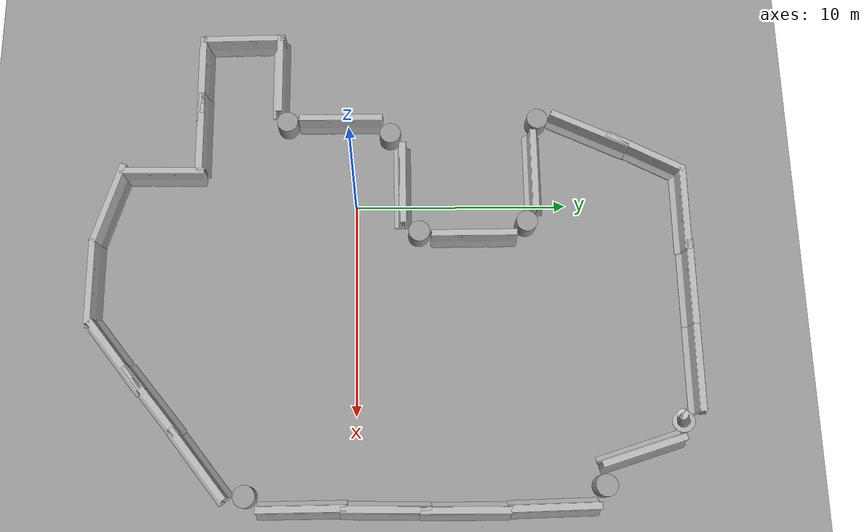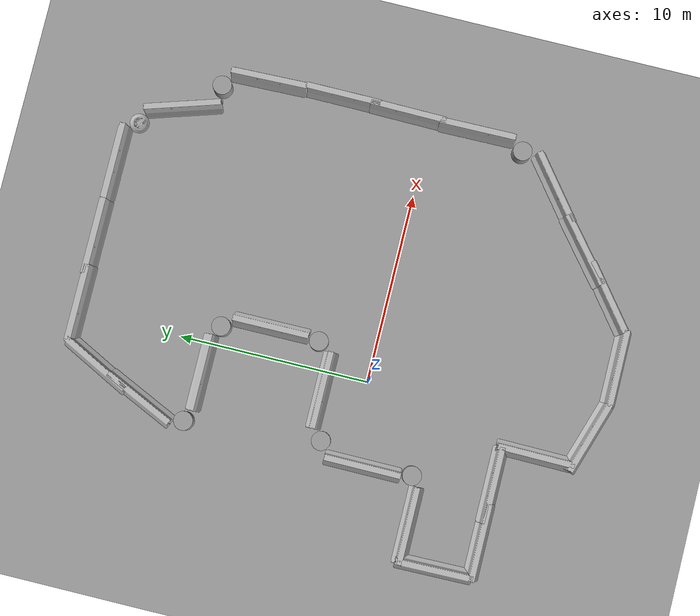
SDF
<sdf version="1.4">
 <world name="default">
  <light name="sun" type="directional">
   <pose>0 0 10 0 -0 0</pose>
   <diffuse>0.8 0.8 0.8 1</diffuse>
   <specular>0.2 0.2 0.2 1</specular>
   <attenuation>
    <range>1000</range>
    <constant>0.9</constant>
    <linear>0.01</linear>
    <quadratic>0.001</quadratic>
   </attenuation>
   <direction>0.5 0.1 -0.9</direction>
  </light>
  <scene><ambient>0.4 0.4 0.4 1</ambient><background>0.7 0.7 0.7 1</background><shadows>1</shadows></scene>
  <physics type="ode">
   <max_step_size>0.01</max_step_size>
   <real_time_factor>1</real_time_factor>
   <real_time_update_rate>100</real_time_update_rate>
   <gravity>0 0 -9.8</gravity>
  </physics>
  <model name="ground_plane_0">
   <static>1</static>
   <link name="link">
    <collision name="collision">
     <geometry><plane><normal>0 0 1</normal><size>100 100</size></plane></geometry>
     <surface><friction><ode><mu>100</mu><mu2>50</mu2></ode></friction></surface>
    </collision>
    <visual name="visual">
     <cast_shadows>0</cast_shadows>
     <geometry><plane><normal>0 0 1</normal><size>100 100</size></plane></geometry>
     <material>
      <script><uri>file://media/materials/scripts/gazebo.material</uri><name>Gazebo/Grey</name></script>
     </material>
    </visual>
    <velocity_decay><linear>0</linear><angular>0</angular></velocity_decay>
   </link>
   <pose>0.497681 0 0 0 -0 0</pose>
  </model>
  <spherical_coordinates>
   <surface_model>EARTH_WGS84</surface_model>
   <latitude_deg>0</latitude_deg>
   <longitude_deg>0</longitude_deg>
   <elevation>0</elevation>
   <heading_deg>0</heading_deg>
  </spherical_coordinates>
  <model name="jersey_barrier_0">
   <static>1</static>
   <link name="link">
    <visual name="visual">
     <geometry><mesh><uri>model://jersey_barrier/meshes/jersey_barrier.dae</uri></mesh></geometry>
    </visual>
    <collision name="upright">
     <pose>0 0 0.5715 0 -0 0</pose>
     <geometry><box><size>4.06542 0.3063 1.143</size></box></geometry>
    </collision>
    <collision name="base">
     <pose>0 0 0.032258 0 -0 0</pose>
     <geometry><box><size>4.06542 0.8107 0.064516</size></box></geometry>
    </collision>
    <collision name="base2">
     <pose>0 0 0.1 0 -0 0</pose>
     <geometry><box><size>4.06542 0.65 0.1</size></box></geometry>
    </collision>
    <collision name="base3">
     <pose>0 0 0.2 0 -0 0</pose>
     <geometry><box><size>4.06542 0.5 0.1</size></box></geometry>
    </collision>
    <collision name="left-angle">
     <pose>0 -0.224 0.2401 0.9 -0 0</pose>
     <geometry><box><size>4.06542 0.5 0.064516</size></box></geometry>
    </collision>
    <collision name="right-angle">
     <pose>0 0.224 0.2401 -0.9 0 0</pose>
     <geometry><box><size>4.06542 0.5 0.064516</size></box></geometry>
    </collision>
    <velocity_decay><linear>0</linear><angular>0</angular></velocity_decay>
   </link>
   <pose>-6.55956 -7.50628 0 0 -0 0</pose>
  </model>
  <model name="jersey_barrier_1">
   <static>1</static>
   <link name="link">
    <visual name="visual">
     <geometry><mesh><uri>model://jersey_barrier/meshes/jersey_barrier.dae</uri></mesh></geometry>
    </visual>
    <collision name="upright">
     <pose>0 0 0.5715 0 -0 0</pose>
     <geometry><box><size>4.06542 0.3063 1.143</size></box></geometry>
    </collision>
    <collision name="base">
     <pose>0 0 0.032258 0 -0 0</pose>
     <geometry><box><size>4.06542 0.8107 0.064516</size></box></geometry>
    </collision>
    <collision name="base2">
     <pose>0 0 0.1 0 -0 0</pose>
     <geometry><box><size>4.06542 0.65 0.1</size></box></geometry>
    </collision>
    <collision name="base3">
     <pose>0 0 0.2 0 -0 0</pose>
     <geometry><box><size>4.06542 0.5 0.1</size></box></geometry>
    </collision>
    <collision name="left-angle">
     <pose>0 -0.224 0.2401 0.9 -0 0</pose>
     <geometry><box><size>4.06542 0.5 0.064516</size></box></geometry>
    </collision>
    <collision name="right-angle">
     <pose>0 0.224 0.2401 -0.9 0 0</pose>
     <geometry><box><size>4.06542 0.5 0.064516</size></box></geometry>
    </collision>
    <velocity_decay><linear>0</linear><angular>0</angular></velocity_decay>
   </link>
   <pose>-8.47215 -5.54894 0 0 0 -1.55482</pose>
  </model>
  <model name="jersey_barrier_4">
   <static>1</static>
   <link name="link">
    <visual name="visual">
     <geometry><mesh><uri>model://jersey_barrier/meshes/jersey_barrier.dae</uri></mesh></geometry>
    </visual>
    <collision name="upright">
     <pose>0 0 0.5715 0 -0 0</pose>
     <geometry><box><size>4.06542 0.3063 1.143</size></box></geometry>
    </collision>
    <collision name="base">
     <pose>0 0 0.032258 0 -0 0</pose>
     <geometry><box><size>4.06542 0.8107 0.064516</size></box></geometry>
    </collision>
    <collision name="base2">
     <pose>0 0 0.1 0 -0 0</pose>
     <geometry><box><size>4.06542 0.65 0.1</size></box></geometry>
    </collision>
    <collision name="base3">
     <pose>0 0 0.2 0 -0 0</pose>
     <geometry><box><size>4.06542 0.5 0.1</size></box></geometry>
    </collision>
    <collision name="left-angle">
     <pose>0 -0.224 0.2401 0.9 -0 0</pose>
     <geometry><box><size>4.06542 0.5 0.064516</size></box></geometry>
    </collision>
    <collision name="right-angle">
     <pose>0 0.224 0.2401 -0.9 0 0</pose>
     <geometry><box><size>4.06542 0.5 0.064516</size></box></geometry>
    </collision>
    <velocity_decay><linear>0</linear><angular>0</angular></velocity_decay>
   </link>
   <pose>-6.6317 -3.73867 0 0 -0 0</pose>
  </model>
  <model name="unit_cylinder_1_0">
   <pose>-4.09884 -3.32638 0.49912 -0 -0 -0.024128</pose>
   <link name="link">
    <inertial>
     <mass>1</mass>
     <inertia><ixx>1</ixx><ixy>0</ixy><ixz>0</ixz><iyy>1</iyy><iyz>0</iyz><izz>1</izz></inertia>
    </inertial>
    <collision name="collision">
     <geometry><cylinder><radius>0.5</radius><length>1</length></cylinder></geometry>
    </collision>
    <visual name="visual">
     <geometry><cylinder><radius>0.5</radius><length>1</length></cylinder></geometry>
     <material>
      <script><uri>file://media/materials/scripts/gazebo.material</uri><name>Gazebo/Grey</name></script>
     </material>
    </visual>
    <velocity_decay><linear>0</linear><angular>0</angular></velocity_decay>
   </link>
   <static>0</static>
  </model>
  <model name="jersey_barrier_5">
   <static>1</static>
   <link name="link">
    <visual name="visual">
     <geometry><mesh><uri>model://jersey_barrier/meshes/jersey_barrier.dae</uri></mesh></geometry>
    </visual>
    <collision name="upright">
     <pose>0 0 0.5715 0 -0 0</pose>
     <geometry><box><size>4.06542 0.3063 1.143</size></box></geometry>
    </collision>
    <collision name="base">
     <pose>0 0 0.032258 0 -0 0</pose>
     <geometry><box><size>4.06542 0.8107 0.064516</size></box></geometry>
    </collision>
    <collision name="base2">
     <pose>0 0 0.1 0 -0 0</pose>
     <geometry><box><size>4.06542 0.65 0.1</size></box></geometry>
    </collision>
    <collision name="base3">
     <pose>0 0 0.2 0 -0 0</pose>
     <geometry><box><size>4.06542 0.5 0.1</size></box></geometry>
    </collision>
    <collision name="left-angle">
     <pose>0 -0.224 0.2401 0.9 -0 0</pose>
     <geometry><box><size>4.06542 0.5 0.064516</size></box></geometry>
    </collision>
    <collision name="right-angle">
     <pose>0 0.224 0.2401 -0.9 0 0</pose>
     <geometry><box><size>4.06542 0.5 0.064516</size></box></geometry>
    </collision>
    <velocity_decay><linear>0</linear><angular>0</angular></velocity_decay>
   </link>
   <pose>-4.25411 -0.755533 0 0 -0 1.56826</pose>
  </model>
  <model name="jersey_barrier_6">
   <static>1</static>
   <link name="link">
    <visual name="visual">
     <geometry><mesh><uri>model://jersey_barrier/meshes/jersey_barrier.dae</uri></mesh></geometry>
    </visual>
    <collision name="upright">
     <pose>0 0 0.5715 0 -0 0</pose>
     <geometry><box><size>4.06542 0.3063 1.143</size></box></geometry>
    </collision>
    <collision name="base">
     <pose>0 0 0.032258 0 -0 0</pose>
     <geometry><box><size>4.06542 0.8107 0.064516</size></box></geometry>
    </collision>
    <collision name="base2">
     <pose>0 0 0.1 0 -0 0</pose>
     <geometry><box><size>4.06542 0.65 0.1</size></box></geometry>
    </collision>
    <collision name="base3">
     <pose>0 0 0.2 0 -0 0</pose>
     <geometry><box><size>4.06542 0.5 0.1</size></box></geometry>
    </collision>
    <collision name="left-angle">
     <pose>0 -0.224 0.2401 0.9 -0 0</pose>
     <geometry><box><size>4.06542 0.5 0.064516</size></box></geometry>
    </collision>
    <collision name="right-angle">
     <pose>0 0.224 0.2401 -0.9 0 0</pose>
     <geometry><box><size>4.06542 0.5 0.064516</size></box></geometry>
    </collision>
    <velocity_decay><linear>0</linear><angular>0</angular></velocity_decay>
   </link>
   <pose>-0.948869 2.20472 0 0 -0 0</pose>
  </model>
  <model name="unit_cylinder_4">
   <pose>-3.48645 1.6265 0.49912 -0 -0 -0.049095</pose>
   <link name="link">
    <inertial>
     <mass>1</mass>
     <inertia><ixx>1</ixx><ixy>0</ixy><ixz>0</ixz><iyy>1</iyy><iyz>0</iyz><izz>1</izz></inertia>
    </inertial>
    <collision name="collision">
     <geometry><cylinder><radius>0.5</radius><length>1</length></cylinder></geometry>
    </collision>
    <visual name="visual">
     <geometry><cylinder><radius>0.5</radius><length>1</length></cylinder></geometry>
     <material>
      <script><uri>file://media/materials/scripts/gazebo.material</uri><name>Gazebo/Grey</name></script>
     </material>
    </visual>
    <velocity_decay><linear>0</linear><angular>0</angular></velocity_decay>
   </link>
   <static>0</static>
  </model>
  <model name="unit_cylinder_5">
   <pose>1.44817 2.95326 0.49912 0 -0 0.000256</pose>
   <link name="link">
    <inertial>
     <mass>1</mass>
     <inertia><ixx>1</ixx><ixy>0</ixy><ixz>0</ixz><iyy>1</iyy><iyz>0</iyz><izz>1</izz></inertia>
    </inertial>
    <collision name="collision">
     <geometry><cylinder><radius>0.5</radius><length>1</length></cylinder></geometry>
    </collision>
    <visual name="visual">
     <geometry><cylinder><radius>0.5</radius><length>1</length></cylinder></geometry>
     <material>
      <script><uri>file://media/materials/scripts/gazebo.material</uri><name>Gazebo/Grey</name></script>
     </material>
    </visual>
    <velocity_decay><linear>0</linear><angular>0</angular></velocity_decay>
   </link>
   <static>0</static>
  </model>
  <model name="jersey_barrier_7">
   <static>1</static>
   <link name="link">
    <visual name="visual">
     <geometry><mesh><uri>model://jersey_barrier/meshes/jersey_barrier.dae</uri></mesh></geometry>
    </visual>
    <collision name="upright">
     <pose>0 0 0.5715 0 -0 0</pose>
     <geometry><box><size>4.06542 0.3063 1.143</size></box></geometry>
    </collision>
    <collision name="base">
     <pose>0 0 0.032258 0 -0 0</pose>
     <geometry><box><size>4.06542 0.8107 0.064516</size></box></geometry>
    </collision>
    <collision name="base2">
     <pose>0 0 0.1 0 -0 0</pose>
     <geometry><box><size>4.06542 0.65 0.1</size></box></geometry>
    </collision>
    <collision name="base3">
     <pose>0 0 0.2 0 -0 0</pose>
     <geometry><box><size>4.06542 0.5 0.1</size></box></geometry>
    </collision>
    <collision name="left-angle">
     <pose>0 -0.224 0.2401 0.9 -0 0</pose>
     <geometry><box><size>4.06542 0.5 0.064516</size></box></geometry>
    </collision>
    <collision name="right-angle">
     <pose>0 0.224 0.2401 -0.9 0 0</pose>
     <geometry><box><size>4.06542 0.5 0.064516</size></box></geometry>
    </collision>
    <velocity_decay><linear>0</linear><angular>0</angular></velocity_decay>
   </link>
   <pose>1.58056 5.53402 0 0 0 -1.56714</pose>
  </model>
  <model name="jersey_barrier_8">
   <static>1</static>
   <link name="link">
    <visual name="visual">
     <geometry><mesh><uri>model://jersey_barrier/meshes/jersey_barrier.dae</uri></mesh></geometry>
    </visual>
    <collision name="upright">
     <pose>0 0 0.5715 0 -0 0</pose>
     <geometry><box><size>4.06542 0.3063 1.143</size></box></geometry>
    </collision>
    <collision name="base">
     <pose>0 0 0.032258 0 -0 0</pose>
     <geometry><box><size>4.06542 0.8107 0.064516</size></box></geometry>
    </collision>
    <collision name="base2">
     <pose>0 0 0.1 0 -0 0</pose>
     <geometry><box><size>4.06542 0.65 0.1</size></box></geometry>
    </collision>
    <collision name="base3">
     <pose>0 0 0.2 0 -0 0</pose>
     <geometry><box><size>4.06542 0.5 0.1</size></box></geometry>
    </collision>
    <collision name="left-angle">
     <pose>0 -0.224 0.2401 0.9 -0 0</pose>
     <geometry><box><size>4.06542 0.5 0.064516</size></box></geometry>
    </collision>
    <collision name="right-angle">
     <pose>0 0.224 0.2401 -0.9 0 0</pose>
     <geometry><box><size>4.06542 0.5 0.064516</size></box></geometry>
    </collision>
    <velocity_decay><linear>0</linear><angular>0</angular></velocity_decay>
   </link>
   <pose>-1.54801 8.47626 0 0 -0 0</pose>
  </model>
  <model name="unit_cylinder_6">
   <pose>0.98745 8.03245 0.49912 0 -0 2e-06</pose>
   <link name="link">
    <inertial>
     <mass>1</mass>
     <inertia><ixx>1</ixx><ixy>0</ixy><ixz>0</ixz><iyy>1</iyy><iyz>0</iyz><izz>1</izz></inertia>
    </inertial>
    <collision name="collision">
     <geometry><cylinder><radius>0.5</radius><length>1</length></cylinder></geometry>
    </collision>
    <visual name="visual">
     <geometry><cylinder><radius>0.5</radius><length>1</length></cylinder></geometry>
     <material>
      <script><uri>file://media/materials/scripts/gazebo.material</uri><name>Gazebo/Grey</name></script>
     </material>
    </visual>
    <velocity_decay><linear>0</linear><angular>0</angular></velocity_decay>
   </link>
   <static>0</static>
  </model>
  <model name="unit_cylinder_7">
   <pose>-4.17694 8.72532 0.49912 -0 -0 -0.061532</pose>
   <link name="link">
    <inertial>
     <mass>1</mass>
     <inertia><ixx>1</ixx><ixy>0</ixy><ixz>0</ixz><iyy>1</iyy><iyz>0</iyz><izz>1</izz></inertia>
    </inertial>
    <collision name="collision">
     <geometry><cylinder><radius>0.5</radius><length>1</length></cylinder></geometry>
    </collision>
    <visual name="visual">
     <geometry><cylinder><radius>0.5</radius><length>1</length></cylinder></geometry>
     <material>
      <script><uri>file://media/materials/scripts/gazebo.material</uri><name>Gazebo/Grey</name></script>
     </material>
    </visual>
    <velocity_decay><linear>0</linear><angular>0</angular></velocity_decay>
   </link>
   <static>0</static>
  </model>
  <model name="jersey_barrier_9">
   <static>1</static>
   <link name="link">
    <visual name="visual">
     <geometry><mesh><uri>model://jersey_barrier/meshes/jersey_barrier.dae</uri></mesh></geometry>
    </visual>
    <collision name="upright">
     <pose>0 0 0.5715 0 -0 0</pose>
     <geometry><box><size>4.06542 0.3063 1.143</size></box></geometry>
    </collision>
    <collision name="base">
     <pose>0 0 0.032258 0 -0 0</pose>
     <geometry><box><size>4.06542 0.8107 0.064516</size></box></geometry>
    </collision>
    <collision name="base2">
     <pose>0 0 0.1 0 -0 0</pose>
     <geometry><box><size>4.06542 0.65 0.1</size></box></geometry>
    </collision>
    <collision name="base3">
     <pose>0 0 0.2 0 -0 0</pose>
     <geometry><box><size>4.06542 0.5 0.1</size></box></geometry>
    </collision>
    <collision name="left-angle">
     <pose>0 -0.224 0.2401 0.9 -0 0</pose>
     <geometry><box><size>4.06542 0.5 0.064516</size></box></geometry>
    </collision>
    <collision name="right-angle">
     <pose>0 0.224 0.2401 -0.9 0 0</pose>
     <geometry><box><size>4.06542 0.5 0.064516</size></box></geometry>
    </collision>
    <velocity_decay><linear>0</linear><angular>0</angular></velocity_decay>
   </link>
   <pose>-3.59854 11.2317 0 0 -0 1.138</pose>
  </model>
  <model name="jersey_barrier_10">
   <static>1</static>
   <link name="link">
    <visual name="visual">
     <geometry><mesh><uri>model://jersey_barrier/meshes/jersey_barrier.dae</uri></mesh></geometry>
    </visual>
    <collision name="upright">
     <pose>0 0 0.5715 0 -0 0</pose>
     <geometry><box><size>4.06542 0.3063 1.143</size></box></geometry>
    </collision>
    <collision name="base">
     <pose>0 0 0.032258 0 -0 0</pose>
     <geometry><box><size>4.06542 0.8107 0.064516</size></box></geometry>
    </collision>
    <collision name="base2">
     <pose>0 0 0.1 0 -0 0</pose>
     <geometry><box><size>4.06542 0.65 0.1</size></box></geometry>
    </collision>
    <collision name="base3">
     <pose>0 0 0.2 0 -0 0</pose>
     <geometry><box><size>4.06542 0.5 0.1</size></box></geometry>
    </collision>
    <collision name="left-angle">
     <pose>0 -0.224 0.2401 0.9 -0 0</pose>
     <geometry><box><size>4.06542 0.5 0.064516</size></box></geometry>
    </collision>
    <collision name="right-angle">
     <pose>0 0.224 0.2401 -0.9 0 0</pose>
     <geometry><box><size>4.06542 0.5 0.064516</size></box></geometry>
    </collision>
    <velocity_decay><linear>0</linear><angular>0</angular></velocity_decay>
   </link>
   <pose>-2.40736 13.8193 0 0 -0 1.1003</pose>
  </model>
  <model name="jersey_barrier_11">
   <static>1</static>
   <link name="link">
    <visual name="visual">
     <geometry><mesh><uri>model://jersey_barrier/meshes/jersey_barrier.dae</uri></mesh></geometry>
    </visual>
    <collision name="upright">
     <pose>0 0 0.5715 0 -0 0</pose>
     <geometry><box><size>4.06542 0.3063 1.143</size></box></geometry>
    </collision>
    <collision name="base">
     <pose>0 0 0.032258 0 -0 0</pose>
     <geometry><box><size>4.06542 0.8107 0.064516</size></box></geometry>
    </collision>
    <collision name="base2">
     <pose>0 0 0.1 0 -0 0</pose>
     <geometry><box><size>4.06542 0.65 0.1</size></box></geometry>
    </collision>
    <collision name="base3">
     <pose>0 0 0.2 0 -0 0</pose>
     <geometry><box><size>4.06542 0.5 0.1</size></box></geometry>
    </collision>
    <collision name="left-angle">
     <pose>0 -0.224 0.2401 0.9 -0 0</pose>
     <geometry><box><size>4.06542 0.5 0.064516</size></box></geometry>
    </collision>
    <collision name="right-angle">
     <pose>0 0.224 0.2401 -0.9 0 0</pose>
     <geometry><box><size>4.06542 0.5 0.064516</size></box></geometry>
    </collision>
    <velocity_decay><linear>0</linear><angular>0</angular></velocity_decay>
   </link>
   <pose>0.438008 15.5062 0 0 -0 0</pose>
  </model>
  <model name="jersey_barrier_12">
   <static>1</static>
   <link name="link">
    <visual name="visual">
     <geometry><mesh><uri>model://jersey_barrier/meshes/jersey_barrier.dae</uri></mesh></geometry>
    </visual>
    <collision name="upright">
     <pose>0 0 0.5715 0 -0 0</pose>
     <geometry><box><size>4.06542 0.3063 1.143</size></box></geometry>
    </collision>
    <collision name="base">
     <pose>0 0 0.032258 0 -0 0</pose>
     <geometry><box><size>4.06542 0.8107 0.064516</size></box></geometry>
    </collision>
    <collision name="base2">
     <pose>0 0 0.1 0 -0 0</pose>
     <geometry><box><size>4.06542 0.65 0.1</size></box></geometry>
    </collision>
    <collision name="base3">
     <pose>0 0 0.2 0 -0 0</pose>
     <geometry><box><size>4.06542 0.5 0.1</size></box></geometry>
    </collision>
    <collision name="left-angle">
     <pose>0 -0.224 0.2401 0.9 -0 0</pose>
     <geometry><box><size>4.06542 0.5 0.064516</size></box></geometry>
    </collision>
    <collision name="right-angle">
     <pose>0 0.224 0.2401 -0.9 0 0</pose>
     <geometry><box><size>4.06542 0.5 0.064516</size></box></geometry>
    </collision>
    <velocity_decay><linear>0</linear><angular>0</angular></velocity_decay>
   </link>
   <pose>4 15.5544 0 0 -0 0</pose>
  </model>
  <model name="jersey_barrier_13">
   <static>1</static>
   <link name="link">
    <visual name="visual">
     <geometry><mesh><uri>model://jersey_barrier/meshes/jersey_barrier.dae</uri></mesh></geometry>
    </visual>
    <collision name="upright">
     <pose>0 0 0.5715 0 -0 0</pose>
     <geometry><box><size>4.06542 0.3063 1.143</size></box></geometry>
    </collision>
    <collision name="base">
     <pose>0 0 0.032258 0 -0 0</pose>
     <geometry><box><size>4.06542 0.8107 0.064516</size></box></geometry>
    </collision>
    <collision name="base2">
     <pose>0 0 0.1 0 -0 0</pose>
     <geometry><box><size>4.06542 0.65 0.1</size></box></geometry>
    </collision>
    <collision name="base3">
     <pose>0 0 0.2 0 -0 0</pose>
     <geometry><box><size>4.06542 0.5 0.1</size></box></geometry>
    </collision>
    <collision name="left-angle">
     <pose>0 -0.224 0.2401 0.9 -0 0</pose>
     <geometry><box><size>4.06542 0.5 0.064516</size></box></geometry>
    </collision>
    <collision name="right-angle">
     <pose>0 0.224 0.2401 -0.9 0 0</pose>
     <geometry><box><size>4.06542 0.5 0.064516</size></box></geometry>
    </collision>
    <velocity_decay><linear>0</linear><angular>0</angular></velocity_decay>
   </link>
   <pose>8 15.5487 0 0 -0 0</pose>
  </model>
  <model name="Construction Barrel_0">
   <link name="link">
    <inertial>
     <pose>0 0 0.4 0 -0 0</pose>
     <mass>500</mass>
     <inertia><ixx>51.2096</ixx><iyy>51.2096</iyy><izz>25</izz><ixy>0</ixy><ixz>0</ixz><iyz>0</iyz></inertia>
    </inertial>
    <collision name="collision">
     <geometry><mesh><uri>model://construction_barrel/meshes/construction_barrel.dae</uri></mesh></geometry>
    </collision>
    <visual name="visual">
     <geometry><mesh><uri>model://construction_barrel/meshes/construction_barrel.dae</uri></mesh></geometry>
    </visual>
    <velocity_decay><linear>0</linear><angular>0</angular></velocity_decay>
   </link>
   <pose>10.346 14.8746 0.168976 0.337969 0.022515 -0.645009</pose>
   <static>0</static>
  </model>
  <model name="jersey_barrier_14">
   <static>1</static>
   <link name="link">
    <visual name="visual">
     <geometry><mesh><uri>model://jersey_barrier/meshes/jersey_barrier.dae</uri></mesh></geometry>
    </visual>
    <collision name="upright">
     <pose>0 0 0.5715 0 -0 0</pose>
     <geometry><box><size>4.06542 0.3063 1.143</size></box></geometry>
    </collision>
    <collision name="base">
     <pose>0 0 0.032258 0 -0 0</pose>
     <geometry><box><size>4.06542 0.8107 0.064516</size></box></geometry>
    </collision>
    <collision name="base2">
     <pose>0 0 0.1 0 -0 0</pose>
     <geometry><box><size>4.06542 0.65 0.1</size></box></geometry>
    </collision>
    <collision name="base3">
     <pose>0 0 0.2 0 -0 0</pose>
     <geometry><box><size>4.06542 0.5 0.1</size></box></geometry>
    </collision>
    <collision name="left-angle">
     <pose>0 -0.224 0.2401 0.9 -0 0</pose>
     <geometry><box><size>4.06542 0.5 0.064516</size></box></geometry>
    </collision>
    <collision name="right-angle">
     <pose>0 0.224 0.2401 -0.9 0 0</pose>
     <geometry><box><size>4.06542 0.5 0.064516</size></box></geometry>
    </collision>
    <velocity_decay><linear>0</linear><angular>0</angular></velocity_decay>
   </link>
   <pose>11.6986 12.8024 0 0 0 -1.26685</pose>
  </model>
  <model name="unit_cylinder_9">
   <pose>13.1929 11.0465 0.49912 0 -0 0.052808</pose>
   <link name="link">
    <inertial>
     <mass>1</mass>
     <inertia><ixx>1</ixx><ixy>0</ixy><ixz>0</ixz><iyy>1</iyy><iyz>0</iyz><izz>1</izz></inertia>
    </inertial>
    <collision name="collision">
     <geometry><cylinder><radius>0.5</radius><length>1</length></cylinder></geometry>
    </collision>
    <visual name="visual">
     <geometry><cylinder><radius>0.5</radius><length>1</length></cylinder></geometry>
     <material>
      <script><uri>file://media/materials/scripts/gazebo.material</uri><name>Gazebo/Grey</name></script>
     </material>
    </visual>
    <velocity_decay><linear>0</linear><angular>0</angular></velocity_decay>
   </link>
   <static>0</static>
  </model>
  <model name="jersey_barrier_15">
   <static>1</static>
   <link name="link">
    <visual name="visual">
     <geometry><mesh><uri>model://jersey_barrier/meshes/jersey_barrier.dae</uri></mesh></geometry>
    </visual>
    <collision name="upright">
     <pose>0 0 0.5715 0 -0 0</pose>
     <geometry><box><size>4.06542 0.3063 1.143</size></box></geometry>
    </collision>
    <collision name="base">
     <pose>0 0 0.032258 0 -0 0</pose>
     <geometry><box><size>4.06542 0.8107 0.064516</size></box></geometry>
    </collision>
    <collision name="base2">
     <pose>0 0 0.1 0 -0 0</pose>
     <geometry><box><size>4.06542 0.65 0.1</size></box></geometry>
    </collision>
    <collision name="base3">
     <pose>0 0 0.2 0 -0 0</pose>
     <geometry><box><size>4.06542 0.5 0.1</size></box></geometry>
    </collision>
    <collision name="left-angle">
     <pose>0 -0.224 0.2401 0.9 -0 0</pose>
     <geometry><box><size>4.06542 0.5 0.064516</size></box></geometry>
    </collision>
    <collision name="right-angle">
     <pose>0 0.224 0.2401 -0.9 0 0</pose>
     <geometry><box><size>4.06542 0.5 0.064516</size></box></geometry>
    </collision>
    <velocity_decay><linear>0</linear><angular>0</angular></velocity_decay>
   </link>
   <pose>14.1286 8.75808 0 0 0 -1.54278</pose>
  </model>
  <model name="jersey_barrier_16">
   <static>1</static>
   <link name="link">
    <visual name="visual">
     <geometry><mesh><uri>model://jersey_barrier/meshes/jersey_barrier.dae</uri></mesh></geometry>
    </visual>
    <collision name="upright">
     <pose>0 0 0.5715 0 -0 0</pose>
     <geometry><box><size>4.06542 0.3063 1.143</size></box></geometry>
    </collision>
    <collision name="base">
     <pose>0 0 0.032258 0 -0 0</pose>
     <geometry><box><size>4.06542 0.8107 0.064516</size></box></geometry>
    </collision>
    <collision name="base2">
     <pose>0 0 0.1 0 -0 0</pose>
     <geometry><box><size>4.06542 0.65 0.1</size></box></geometry>
    </collision>
    <collision name="base3">
     <pose>0 0 0.2 0 -0 0</pose>
     <geometry><box><size>4.06542 0.5 0.1</size></box></geometry>
    </collision>
    <collision name="left-angle">
     <pose>0 -0.224 0.2401 0.9 -0 0</pose>
     <geometry><box><size>4.06542 0.5 0.064516</size></box></geometry>
    </collision>
    <collision name="right-angle">
     <pose>0 0.224 0.2401 -0.9 0 0</pose>
     <geometry><box><size>4.06542 0.5 0.064516</size></box></geometry>
    </collision>
    <velocity_decay><linear>0</linear><angular>0</angular></velocity_decay>
   </link>
   <pose>14.2316 4.81595 0 0 0 -1.57305</pose>
  </model>
  <model name="jersey_barrier_17">
   <static>1</static>
   <link name="link">
    <visual name="visual">
     <geometry><mesh><uri>model://jersey_barrier/meshes/jersey_barrier.dae</uri></mesh></geometry>
    </visual>
    <collision name="upright">
     <pose>0 0 0.5715 0 -0 0</pose>
     <geometry><box><size>4.06542 0.3063 1.143</size></box></geometry>
    </collision>
    <collision name="base">
     <pose>0 0 0.032258 0 -0 0</pose>
     <geometry><box><size>4.06542 0.8107 0.064516</size></box></geometry>
    </collision>
    <collision name="base2">
     <pose>0 0 0.1 0 -0 0</pose>
     <geometry><box><size>4.06542 0.65 0.1</size></box></geometry>
    </collision>
    <collision name="base3">
     <pose>0 0 0.2 0 -0 0</pose>
     <geometry><box><size>4.06542 0.5 0.1</size></box></geometry>
    </collision>
    <collision name="left-angle">
     <pose>0 -0.224 0.2401 0.9 -0 0</pose>
     <geometry><box><size>4.06542 0.5 0.064516</size></box></geometry>
    </collision>
    <collision name="right-angle">
     <pose>0 0.224 0.2401 -0.9 0 0</pose>
     <geometry><box><size>4.06542 0.5 0.064516</size></box></geometry>
    </collision>
    <velocity_decay><linear>0</linear><angular>0</angular></velocity_decay>
   </link>
   <pose>14.1811 1.30932 0 0 0 -1.58255</pose>
  </model>
  <model name="jersey_barrier_18">
   <static>1</static>
   <link name="link">
    <visual name="visual">
     <geometry><mesh><uri>model://jersey_barrier/meshes/jersey_barrier.dae</uri></mesh></geometry>
    </visual>
    <collision name="upright">
     <pose>0 0 0.5715 0 -0 0</pose>
     <geometry><box><size>4.06542 0.3063 1.143</size></box></geometry>
    </collision>
    <collision name="base">
     <pose>0 0 0.032258 0 -0 0</pose>
     <geometry><box><size>4.06542 0.8107 0.064516</size></box></geometry>
    </collision>
    <collision name="base2">
     <pose>0 0 0.1 0 -0 0</pose>
     <geometry><box><size>4.06542 0.65 0.1</size></box></geometry>
    </collision>
    <collision name="base3">
     <pose>0 0 0.2 0 -0 0</pose>
     <geometry><box><size>4.06542 0.5 0.1</size></box></geometry>
    </collision>
    <collision name="left-angle">
     <pose>0 -0.224 0.2401 0.9 -0 0</pose>
     <geometry><box><size>4.06542 0.5 0.064516</size></box></geometry>
    </collision>
    <collision name="right-angle">
     <pose>0 0.224 0.2401 -0.9 0 0</pose>
     <geometry><box><size>4.06542 0.5 0.064516</size></box></geometry>
    </collision>
    <velocity_decay><linear>0</linear><angular>0</angular></velocity_decay>
   </link>
   <pose>14.1302 -2.41569 0 0 0 -1.55957</pose>
  </model>
  <model name="jersey_barrier_19">
   <static>1</static>
   <link name="link">
    <visual name="visual">
     <geometry><mesh><uri>model://jersey_barrier/meshes/jersey_barrier.dae</uri></mesh></geometry>
    </visual>
    <collision name="upright">
     <pose>0 0 0.5715 0 -0 0</pose>
     <geometry><box><size>4.06542 0.3063 1.143</size></box></geometry>
    </collision>
    <collision name="base">
     <pose>0 0 0.032258 0 -0 0</pose>
     <geometry><box><size>4.06542 0.8107 0.064516</size></box></geometry>
    </collision>
    <collision name="base2">
     <pose>0 0 0.1 0 -0 0</pose>
     <geometry><box><size>4.06542 0.65 0.1</size></box></geometry>
    </collision>
    <collision name="base3">
     <pose>0 0 0.2 0 -0 0</pose>
     <geometry><box><size>4.06542 0.5 0.1</size></box></geometry>
    </collision>
    <collision name="left-angle">
     <pose>0 -0.224 0.2401 0.9 -0 0</pose>
     <geometry><box><size>4.06542 0.5 0.064516</size></box></geometry>
    </collision>
    <collision name="right-angle">
     <pose>0 0.224 0.2401 -0.9 0 0</pose>
     <geometry><box><size>4.06542 0.5 0.064516</size></box></geometry>
    </collision>
    <velocity_decay><linear>0</linear><angular>0</angular></velocity_decay>
   </link>
   <pose>-1.60053 -9.25024 0 0 0 -1.58024</pose>
  </model>
  <model name="unit_cylinder_10">
   <pose>13.5594 -4.93909 0.49912 0 -0 0.002938</pose>
   <link name="link">
    <inertial>
     <mass>1</mass>
     <inertia><ixx>1</ixx><ixy>0</ixy><ixz>0</ixz><iyy>1</iyy><iyz>0</iyz><izz>1</izz></inertia>
    </inertial>
    <collision name="collision">
     <geometry><cylinder><radius>0.5</radius><length>1</length></cylinder></geometry>
    </collision>
    <visual name="visual">
     <geometry><cylinder><radius>0.5</radius><length>1</length></cylinder></geometry>
     <material>
      <script><uri>file://media/materials/scripts/gazebo.material</uri><name>Gazebo/Grey</name></script>
     </material>
    </visual>
    <velocity_decay><linear>0</linear><angular>0</angular></velocity_decay>
   </link>
   <static>0</static>
  </model>
  <model name="jersey_barrier_21">
   <static>1</static>
   <link name="link">
    <visual name="visual">
     <geometry><mesh><uri>model://jersey_barrier/meshes/jersey_barrier.dae</uri></mesh></geometry>
    </visual>
    <collision name="upright">
     <pose>0 0 0.5715 0 -0 0</pose>
     <geometry><box><size>4.06542 0.3063 1.143</size></box></geometry>
    </collision>
    <collision name="base">
     <pose>0 0 0.032258 0 -0 0</pose>
     <geometry><box><size>4.06542 0.8107 0.064516</size></box></geometry>
    </collision>
    <collision name="base2">
     <pose>0 0 0.1 0 -0 0</pose>
     <geometry><box><size>4.06542 0.65 0.1</size></box></geometry>
    </collision>
    <collision name="base3">
     <pose>0 0 0.2 0 -0 0</pose>
     <geometry><box><size>4.06542 0.5 0.1</size></box></geometry>
    </collision>
    <collision name="left-angle">
     <pose>0 -0.224 0.2401 0.9 -0 0</pose>
     <geometry><box><size>4.06542 0.5 0.064516</size></box></geometry>
    </collision>
    <collision name="right-angle">
     <pose>0 0.224 0.2401 -0.9 0 0</pose>
     <geometry><box><size>4.06542 0.5 0.064516</size></box></geometry>
    </collision>
    <velocity_decay><linear>0</linear><angular>0</angular></velocity_decay>
   </link>
   <pose>12.1385 -7.05612 0 0 -0 0.663716</pose>
  </model>
  <model name="jersey_barrier_22">
   <static>1</static>
   <link name="link">
    <visual name="visual">
     <geometry><mesh><uri>model://jersey_barrier/meshes/jersey_barrier.dae</uri></mesh></geometry>
    </visual>
    <collision name="upright">
     <pose>0 0 0.5715 0 -0 0</pose>
     <geometry><box><size>4.06542 0.3063 1.143</size></box></geometry>
    </collision>
    <collision name="base">
     <pose>0 0 0.032258 0 -0 0</pose>
     <geometry><box><size>4.06542 0.8107 0.064516</size></box></geometry>
    </collision>
    <collision name="base2">
     <pose>0 0 0.1 0 -0 0</pose>
     <geometry><box><size>4.06542 0.65 0.1</size></box></geometry>
    </collision>
    <collision name="base3">
     <pose>0 0 0.2 0 -0 0</pose>
     <geometry><box><size>4.06542 0.5 0.1</size></box></geometry>
    </collision>
    <collision name="left-angle">
     <pose>0 -0.224 0.2401 0.9 -0 0</pose>
     <geometry><box><size>4.06542 0.5 0.064516</size></box></geometry>
    </collision>
    <collision name="right-angle">
     <pose>0 0.224 0.2401 -0.9 0 0</pose>
     <geometry><box><size>4.06542 0.5 0.064516</size></box></geometry>
    </collision>
    <velocity_decay><linear>0</linear><angular>0</angular></velocity_decay>
   </link>
   <pose>9.33136 -9.25639 0 0 -0 0.684229</pose>
  </model>
  <model name="jersey_barrier_23">
   <static>1</static>
   <link name="link">
    <visual name="visual">
     <geometry><mesh><uri>model://jersey_barrier/meshes/jersey_barrier.dae</uri></mesh></geometry>
    </visual>
    <collision name="upright">
     <pose>0 0 0.5715 0 -0 0</pose>
     <geometry><box><size>4.06542 0.3063 1.143</size></box></geometry>
    </collision>
    <collision name="base">
     <pose>0 0 0.032258 0 -0 0</pose>
     <geometry><box><size>4.06542 0.8107 0.064516</size></box></geometry>
    </collision>
    <collision name="base2">
     <pose>0 0 0.1 0 -0 0</pose>
     <geometry><box><size>4.06542 0.65 0.1</size></box></geometry>
    </collision>
    <collision name="base3">
     <pose>0 0 0.2 0 -0 0</pose>
     <geometry><box><size>4.06542 0.5 0.1</size></box></geometry>
    </collision>
    <collision name="left-angle">
     <pose>0 -0.224 0.2401 0.9 -0 0</pose>
     <geometry><box><size>4.06542 0.5 0.064516</size></box></geometry>
    </collision>
    <collision name="right-angle">
     <pose>0 0.224 0.2401 -0.9 0 0</pose>
     <geometry><box><size>4.06542 0.5 0.064516</size></box></geometry>
    </collision>
    <velocity_decay><linear>0</linear><angular>0</angular></velocity_decay>
   </link>
   <pose>7.23558 -10.9928 0 0 -0 0.665191</pose>
  </model>
  <model name="jersey_barrier_24">
   <static>1</static>
   <link name="link">
    <visual name="visual">
     <geometry><mesh><uri>model://jersey_barrier/meshes/jersey_barrier.dae</uri></mesh></geometry>
    </visual>
    <collision name="upright">
     <pose>0 0 0.5715 0 -0 0</pose>
     <geometry><box><size>4.06542 0.3063 1.143</size></box></geometry>
    </collision>
    <collision name="base">
     <pose>0 0 0.032258 0 -0 0</pose>
     <geometry><box><size>4.06542 0.8107 0.064516</size></box></geometry>
    </collision>
    <collision name="base2">
     <pose>0 0 0.1 0 -0 0</pose>
     <geometry><box><size>4.06542 0.65 0.1</size></box></geometry>
    </collision>
    <collision name="base3">
     <pose>0 0 0.2 0 -0 0</pose>
     <geometry><box><size>4.06542 0.5 0.1</size></box></geometry>
    </collision>
    <collision name="left-angle">
     <pose>0 -0.224 0.2401 0.9 -0 0</pose>
     <geometry><box><size>4.06542 0.5 0.064516</size></box></geometry>
    </collision>
    <collision name="right-angle">
     <pose>0 0.224 0.2401 -0.9 0 0</pose>
     <geometry><box><size>4.06542 0.5 0.064516</size></box></geometry>
    </collision>
    <velocity_decay><linear>0</linear><angular>0</angular></velocity_decay>
   </link>
   <pose>-3.58599 -7.48801 0 0 -0 0</pose>
  </model>
  <model name="jersey_barrier_25">
   <static>1</static>
   <link name="link">
    <visual name="visual">
     <geometry><mesh><uri>model://jersey_barrier/meshes/jersey_barrier.dae</uri></mesh></geometry>
    </visual>
    <collision name="upright">
     <pose>0 0 0.5715 0 -0 0</pose>
     <geometry><box><size>4.06542 0.3063 1.143</size></box></geometry>
    </collision>
    <collision name="base">
     <pose>0 0 0.032258 0 -0 0</pose>
     <geometry><box><size>4.06542 0.8107 0.064516</size></box></geometry>
    </collision>
    <collision name="base2">
     <pose>0 0 0.1 0 -0 0</pose>
     <geometry><box><size>4.06542 0.65 0.1</size></box></geometry>
    </collision>
    <collision name="base3">
     <pose>0 0 0.2 0 -0 0</pose>
     <geometry><box><size>4.06542 0.5 0.1</size></box></geometry>
    </collision>
    <collision name="left-angle">
     <pose>0 -0.224 0.2401 0.9 -0 0</pose>
     <geometry><box><size>4.06542 0.5 0.064516</size></box></geometry>
    </collision>
    <collision name="right-angle">
     <pose>0 0.224 0.2401 -0.9 0 0</pose>
     <geometry><box><size>4.06542 0.5 0.064516</size></box></geometry>
    </collision>
    <velocity_decay><linear>0</linear><angular>0</angular></velocity_decay>
   </link>
   <pose>3.76346 -12.3211 0 0 -0 0</pose>
  </model>
  <model name="jersey_barrier_26">
   <static>1</static>
   <link name="link">
    <visual name="visual">
     <geometry><mesh><uri>model://jersey_barrier/meshes/jersey_barrier.dae</uri></mesh></geometry>
    </visual>
    <collision name="upright">
     <pose>0 0 0.5715 0 -0 0</pose>
     <geometry><box><size>4.06542 0.3063 1.143</size></box></geometry>
    </collision>
    <collision name="base">
     <pose>0 0 0.032258 0 -0 0</pose>
     <geometry><box><size>4.06542 0.8107 0.064516</size></box></geometry>
    </collision>
    <collision name="base2">
     <pose>0 0 0.1 0 -0 0</pose>
     <geometry><box><size>4.06542 0.65 0.1</size></box></geometry>
    </collision>
    <collision name="base3">
     <pose>0 0 0.2 0 -0 0</pose>
     <geometry><box><size>4.06542 0.5 0.1</size></box></geometry>
    </collision>
    <collision name="left-angle">
     <pose>0 -0.224 0.2401 0.9 -0 0</pose>
     <geometry><box><size>4.06542 0.5 0.064516</size></box></geometry>
    </collision>
    <collision name="right-angle">
     <pose>0 0.224 0.2401 -0.9 0 0</pose>
     <geometry><box><size>4.06542 0.5 0.064516</size></box></geometry>
    </collision>
    <velocity_decay><linear>0</linear><angular>0</angular></velocity_decay>
   </link>
   <pose>-0.028102 -11.7105 0 0 0 -0.311161</pose>
  </model>
 </world>
</sdf>
